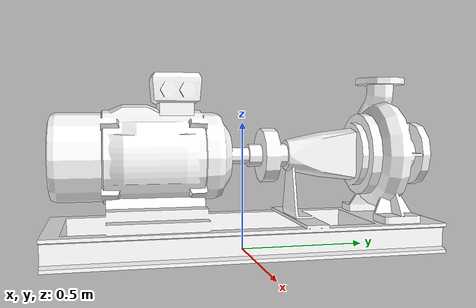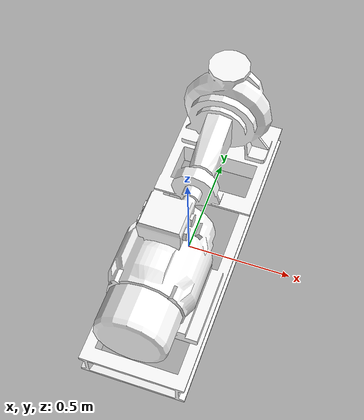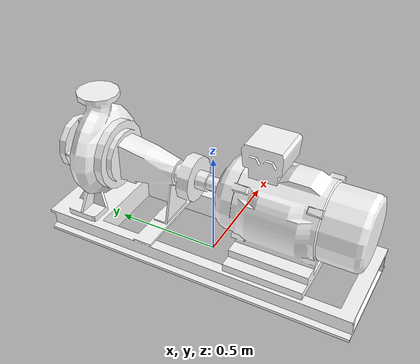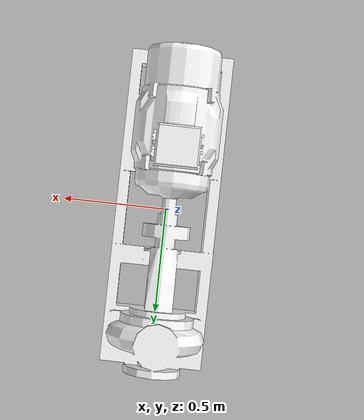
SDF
<?xml version="1.0" ?>
<sdf version="1.11">
  <model name="pump">
    <static>true</static>
    <link name="link">
      <collision name="collision">
        <pose>0 0 0.0 0 0 0</pose>
        <geometry>
          <mesh>
            <uri>meshes/pump.dae</uri>
          </mesh>
        </geometry>
      </collision>
      <visual name="visual">
        <geometry>
          <mesh>
            <uri>meshes/pump.dae</uri>
          </mesh>
        </geometry>
        <material>
          <diffuse>1.0 1.0 1.0</diffuse>
          <specular>1.0 1.0 1.0</specular>
          <pbr>
            <metal>
            <albedo_map>materials/textures/pump_albedo.png</albedo_map>
            <roughness_map>materials/textures/pump_roughness.png</roughness_map>
            <metalness_map>materials/textures/pump_metallic.png</metalness_map>
            <normal_map>materials/textures//pump_normal.png</normal_map>
            </metal>
          </pbr>
        </material>
      </visual>
    </link>
  </model>
</sdf>
